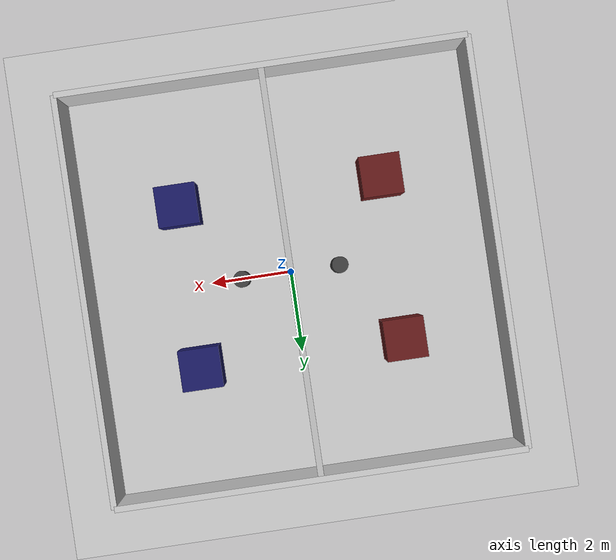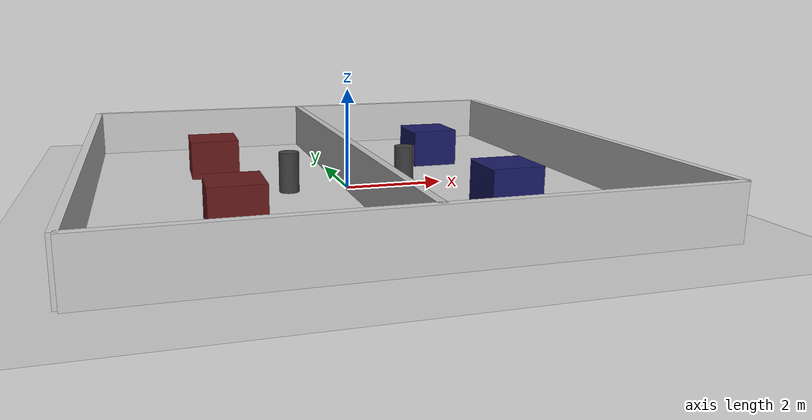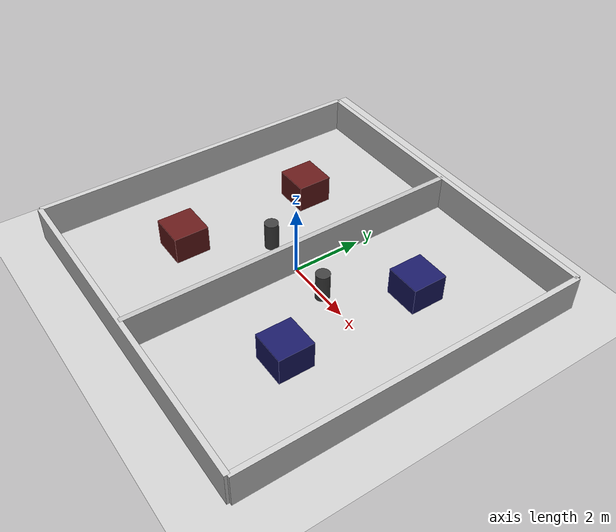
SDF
<?xml version="1.0" ?>
<sdf version="1.6">
  <world name="divided_room">
    <include>
      <uri>model://ground_plane</uri>
    </include>

    <include>
      <uri>model://sun</uri>
    </include>

    <scene>
      <shadows>false</shadows>
    </scene>

    <physics type="ode">
      <real_time_update_rate>250.0</real_time_update_rate>
      <max_step_size>0.004</max_step_size>
      <real_time_factor>1</real_time_factor>
    </physics>

    <!-- Outer Walls -->
    <model name="north_wall">
      <static>true</static>
      <pose>0 5 0.5 0 0 0</pose>
      <link name="link">
        <collision name="collision">
          <geometry><box><size>10.0 0.15 1.0</size></box></geometry>
        </collision>
        <visual name="visual">
          <geometry><box><size>10.0 0.15 1.0</size></box></geometry>
          <material><ambient>0.8 0.8 0.8 1</ambient><diffuse>0.8 0.8 0.8 1</diffuse></material>
        </visual>
      </link>
    </model>

    <model name="south_wall">
      <static>true</static>
      <pose>0 -5 0.5 0 0 0</pose>
      <link name="link">
        <collision name="collision">
          <geometry><box><size>10.0 0.15 1.0</size></box></geometry>
        </collision>
        <visual name="visual">
          <geometry><box><size>10.0 0.15 1.0</size></box></geometry>
          <material><ambient>0.8 0.8 0.8 1</ambient><diffuse>0.8 0.8 0.8 1</diffuse></material>
        </visual>
      </link>
    </model>

    <model name="east_wall">
      <static>true</static>
      <pose>5 0 0.5 0 0 0</pose>
      <link name="link">
        <collision name="collision">
          <geometry><box><size>0.15 10.0 1.0</size></box></geometry>
        </collision>
        <visual name="visual">
          <geometry><box><size>0.15 10.0 1.0</size></box></geometry>
          <material><ambient>0.8 0.8 0.8 1</ambient><diffuse>0.8 0.8 0.8 1</diffuse></material>
        </visual>
      </link>
    </model>

    <model name="west_wall">
      <static>true</static>
      <pose>-5 0 0.5 0 0 0</pose>
      <link name="link">
        <collision name="collision">
          <geometry><box><size>0.15 10.0 1.0</size></box></geometry>
        </collision>
        <visual name="visual">
          <geometry><box><size>0.15 10.0 1.0</size></box></geometry>
          <material><ambient>0.8 0.8 0.8 1</ambient><diffuse>0.8 0.8 0.8 1</diffuse></material>
        </visual>
      </link>
    </model>

    <!-- Center divider wall partition at x=0 -->
    <model name="center_divider">
      <static>true</static>
      <pose>0.0 0.0 0.5 0 0 0</pose>
      <link name="link">
        <collision name="collision">
          <geometry><box><size>0.15 10.0 1.0</size></box></geometry>
        </collision>
        <visual name="visual">
          <geometry><box><size>0.15 10.0 1.0</size></box></geometry>
          <material><ambient>0.75 0.75 0.75 1</ambient><diffuse>0.75 0.75 0.75 1</diffuse></material>
        </visual>
      </link>
    </model>

    <!-- Obstacles Left Room (Area 1) -->
    <model name="box_left_1">
      <static>true</static>
      <pose>-2.5 2.0 0.4 0 0 0</pose>
      <link name="link">
        <collision name="collision">
          <geometry><box><size>1.0 1.0 0.8</size></box></geometry>
        </collision>
        <visual name="visual">
          <geometry><box><size>1.0 1.0 0.8</size></box></geometry>
          <material><ambient>0.4 0.1 0.1 1</ambient><diffuse>0.4 0.1 0.1 1</diffuse></material>
        </visual>
      </link>
    </model>

    <model name="box_left_2">
      <static>true</static>
      <pose>-2.5 -2.0 0.4 0 0 0</pose>
      <link name="link">
        <collision name="collision">
          <geometry><box><size>1.0 1.0 0.8</size></box></geometry>
        </collision>
        <visual name="visual">
          <geometry><box><size>1.0 1.0 0.8</size></box></geometry>
          <material><ambient>0.4 0.1 0.1 1</ambient><diffuse>0.4 0.1 0.1 1</diffuse></material>
        </visual>
      </link>
    </model>

    <model name="pillar_left">
      <static>true</static>
      <pose>-1.2 0.0 0.4 0 0 0</pose>
      <link name="link">
        <collision name="collision">
          <geometry><cylinder><radius>0.2</radius><length>0.8</length></cylinder></geometry>
        </collision>
        <visual name="visual">
          <geometry><cylinder><radius>0.2</radius><length>0.8</length></cylinder></geometry>
          <material><ambient>0.25 0.25 0.25 1</ambient><diffuse>0.25 0.25 0.25 1</diffuse></material>
        </visual>
      </link>
    </model>

    <!-- Obstacles Right Room (Area 2) -->
    <model name="box_right_1">
      <static>true</static>
      <pose>2.5 2.0 0.4 0 0 0</pose>
      <link name="link">
        <collision name="collision">
          <geometry><box><size>1.0 1.0 0.8</size></box></geometry>
        </collision>
        <visual name="visual">
          <geometry><box><size>1.0 1.0 0.8</size></box></geometry>
          <material><ambient>0.1 0.1 0.4 1</ambient><diffuse>0.1 0.1 0.4 1</diffuse></material>
        </visual>
      </link>
    </model>

    <model name="box_right_2">
      <static>true</static>
      <pose>2.5 -2.0 0.4 0 0 0</pose>
      <link name="link">
        <collision name="collision">
          <geometry><box><size>1.0 1.0 0.8</size></box></geometry>
        </collision>
        <visual name="visual">
          <geometry><box><size>1.0 1.0 0.8</size></box></geometry>
          <material><ambient>0.1 0.1 0.4 1</ambient><diffuse>0.1 0.1 0.4 1</diffuse></material>
        </visual>
      </link>
    </model>

    <model name="pillar_right">
      <static>true</static>
      <pose>1.2 0.0 0.4 0 0 0</pose>
      <link name="link">
        <collision name="collision">
          <geometry><cylinder><radius>0.2</radius><length>0.8</length></cylinder></geometry>
        </collision>
        <visual name="visual">
          <geometry><cylinder><radius>0.2</radius><length>0.8</length></cylinder></geometry>
          <material><ambient>0.25 0.25 0.25 1</ambient><diffuse>0.25 0.25 0.25 1</diffuse></material>
        </visual>
      </link>
    </model>

  </world>
</sdf>
